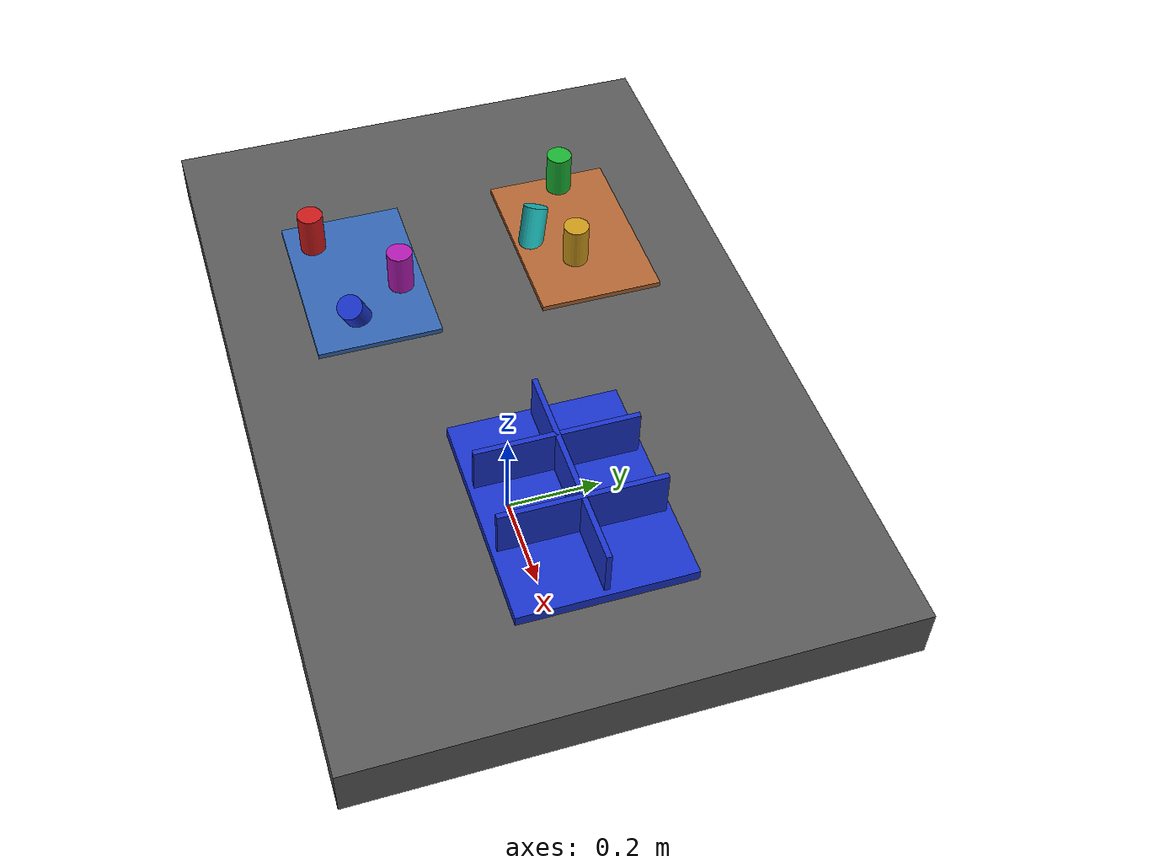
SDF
<?xml version="1.0" ?>
<sdf version="1.9">
  <!-- Standalone M1B scene.  The controller-backed Panda is spawned by the
       existing launch path; this file never alters the frozen M1A cube world. -->
  <world name="industrial_cylinder_v1">
    <physics name="bullet" type="bullet"><max_step_size>0.001</max_step_size><real_time_factor>1.0</real_time_factor></physics>
    <plugin name="gz::sim::systems::Physics" filename="gz-sim-physics-system"><engine><filename>gz-physics-bullet-featherstone-plugin</filename></engine></plugin>
    <plugin name="gz::sim::systems::UserCommands" filename="gz-sim-user-commands-system"/>
    <plugin name="gz::sim::systems::SceneBroadcaster" filename="gz-sim-scene-broadcaster-system"/>
    <plugin name="gz::sim::systems::Sensors" filename="gz-sim-sensors-system"><render_engine>ogre2</render_engine></plugin>
    <gravity>0 0 -9.81</gravity>
    <light type="directional" name="industrial_light"><pose>0 0 5 0 0 0</pose><direction>-0.3 0.2 -0.9</direction><diffuse>0.9 0.9 0.9 1</diffuse></light>
    <model name="industrial_work_table"><static>true</static><link name="link"><pose>0 0 0.4 0 0 0</pose><collision name="collision"><geometry><box><size>1.5 1.0 0.1</size></box></geometry></collision><visual name="visual"><geometry><box><size>1.5 1.0 0.1</size></box></geometry><material><diffuse>0.35 0.35 0.35 1</diffuse></material></visual></link></model>
    <model name="camera_fixture"><static>true</static><link name="camera_rgbd"><pose>-0.80 -0.80 1.40 0 0.77 0.93</pose><sensor name="front_rgbd" type="rgbd_camera"><always_on>1</always_on><update_rate>15</update_rate><topic>/xh/camera/rgbd</topic><camera><horizontal_fov>1.047</horizontal_fov><image><width>640</width><height>480</height><format>R8G8B8</format></image><clip><near>0.1</near><far>4.0</far></clip></camera></sensor></link></model>
    <model name="incoming_zone_a"><static>true</static><link name="link"><pose>-0.28 -0.22 0.455 0 0 0</pose><visual name="visual"><geometry><box><size>0.36 0.24 0.01</size></box></geometry><material><diffuse>0.2 0.4 0.7 1</diffuse></material></visual></link></model>
    <model name="incoming_zone_b"><static>true</static><link name="link"><pose>-0.28 0.22 0.455 0 0 0</pose><visual name="visual"><geometry><box><size>0.36 0.24 0.01</size></box></geometry><material><diffuse>0.7 0.4 0.2 1</diffuse></material></visual></link></model>
    <!-- M1B_RANDOM_PARTS_BEGIN -->
    <model name="cylinder_01"><pose>-0.3940 -0.2880 0.5000 0.0000 0.0000 0.4913</pose><link name="link"><inertial><mass>0.06</mass></inertial><collision name="collision"><geometry><cylinder><radius>0.025</radius><length>0.09</length></cylinder></geometry></collision><visual name="visual"><geometry><cylinder><radius>0.025</radius><length>0.09</length></cylinder></geometry><material><diffuse>0.800 0.100 0.100 1</diffuse><specular>0.15 0.15 0.15 1</specular></material></visual></link></model>
    <model name="cylinder_02"><pose>-0.4274 0.2367 0.5000 3.1416 0.0000 0.9575</pose><link name="link"><inertial><mass>0.06</mass></inertial><collision name="collision"><geometry><cylinder><radius>0.025</radius><length>0.09</length></cylinder></geometry></collision><visual name="visual"><geometry><cylinder><radius>0.025</radius><length>0.09</length></cylinder></geometry><material><diffuse>0.100 0.700 0.200 1</diffuse><specular>0.15 0.15 0.15 1</specular></material></visual></link></model>
    <model name="cylinder_03"><pose>-0.1676 -0.2524 0.4800 0.4500 -0.3000 1.5245</pose><link name="link"><inertial><mass>0.06</mass></inertial><collision name="collision"><geometry><cylinder><radius>0.025</radius><length>0.09</length></cylinder></geometry></collision><visual name="visual"><geometry><cylinder><radius>0.025</radius><length>0.09</length></cylinder></geometry><material><diffuse>0.100 0.200 0.800 1</diffuse><specular>0.15 0.15 0.15 1</specular></material></visual></link></model>
    <model name="cylinder_04"><pose>-0.2130 0.2026 0.5000 0.0000 0.0000 -3.0651</pose><link name="link"><inertial><mass>0.06</mass></inertial><collision name="collision"><geometry><cylinder><radius>0.025</radius><length>0.09</length></cylinder></geometry></collision><visual name="visual"><geometry><cylinder><radius>0.025</radius><length>0.09</length></cylinder></geometry><material><diffuse>0.800 0.600 0.100 1</diffuse><specular>0.15 0.15 0.15 1</specular></material></visual></link></model>
    <model name="cylinder_05"><pose>-0.2399 -0.1458 0.5000 3.1416 0.0000 -1.6098</pose><link name="link"><inertial><mass>0.06</mass></inertial><collision name="collision"><geometry><cylinder><radius>0.025</radius><length>0.09</length></cylinder></geometry></collision><visual name="visual"><geometry><cylinder><radius>0.025</radius><length>0.09</length></cylinder></geometry><material><diffuse>0.700 0.100 0.700 1</diffuse><specular>0.15 0.15 0.15 1</specular></material></visual></link></model>
    <model name="cylinder_06"><pose>-0.2997 0.1411 0.4800 0.4500 -0.3000 -1.5881</pose><link name="link"><inertial><mass>0.06</mass></inertial><collision name="collision"><geometry><cylinder><radius>0.025</radius><length>0.09</length></cylinder></geometry></collision><visual name="visual"><geometry><cylinder><radius>0.025</radius><length>0.09</length></cylinder></geometry><material><diffuse>0.100 0.700 0.700 1</diffuse><specular>0.15 0.15 0.15 1</specular></material></visual></link></model>
    <!-- M1B_RANDOM_PARTS_END -->
    <model name="blue_partition_bin"><static>true</static><pose>0.36 0 0.45 0 0 0</pose><link name="link"><collision name="floor"><pose>0 0 0.01 0 0 0</pose><geometry><box><size>0.42 0.32 0.02</size></box></geometry></collision><visual name="floor_visual"><pose>0 0 0.01 0 0 0</pose><geometry><box><size>0.42 0.32 0.02</size></box></geometry><material><diffuse>0.1 0.2 0.8 1</diffuse></material></visual><visual name="row_divider"><pose>0 0 0.06 0 0 0</pose><geometry><box><size>0.40 0.01 0.10</size></box></geometry><material><diffuse>0.1 0.2 0.8 1</diffuse></material></visual><visual name="col_divider_a"><pose>-0.07 0 0.06 0 0 0</pose><geometry><box><size>0.01 0.30 0.10</size></box></geometry><material><diffuse>0.1 0.2 0.8 1</diffuse></material></visual><visual name="col_divider_b"><pose>0.07 0 0.06 0 0 0</pose><geometry><box><size>0.01 0.30 0.10</size></box></geometry><material><diffuse>0.1 0.2 0.8 1</diffuse></material></visual></link></model>
    <!-- Reserved only: second table, bin transport corridor, stackable-bin
         collision volume, and second arm mounting namespace. -->
  </world>
</sdf>
